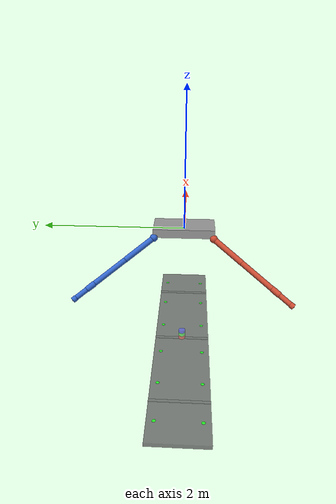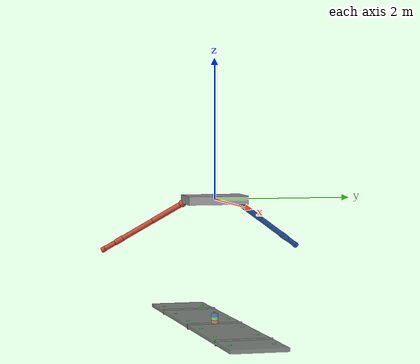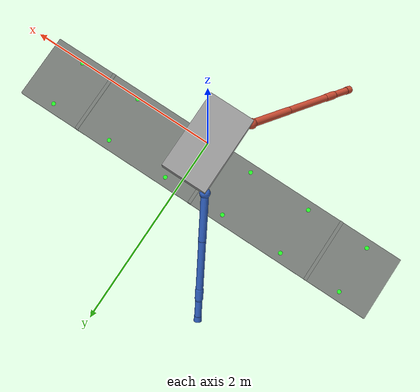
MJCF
<mujoco model="VISPA_crawling_rwa3_8pct">

  <!-- ==================== COMPILER ==================== -->
  <compiler angle="radian" eulerseq="XYZ" autolimits="true"/>

  <!-- ==================== OPTIONS ==================== -->
  <option gravity="0 0 0" timestep="0.001" integrator="RK4">
    <!-- RK4: best momentum conservation for coupled floating-base systems -->
    <flag energy="enable" contact="enable"/>
  </option>

  <!-- ==================== VISUAL ==================== -->
  <visual>
    <headlight diffuse="0.6 0.6 0.6" ambient="0.3 0.3 0.3"/>
    <rgba com="0 1 0 0" contactforce="1 0 0 0.5"/>
    <scale com="0.05" contactwidth="0.02" contactheight="0.05"
           forcewidth="0.02" framelength="0.15" framewidth="0.005"/>
  </visual>

  <!-- ==================== DEFAULTS ==================== -->
  <default>
    <!-- Robot joints -->
    <default class="robot_joint">
      <joint damping="0.05" armature="0.05" limited="true"
             range="-3.14159 3.14159"/>
      <default class="arm_a">
        <geom rgba="0.2 0.4 0.8 1" contype="0" conaffinity="0"/>
      </default>
      <default class="arm_b">
        <geom rgba="0.8 0.3 0.2 1" contype="0" conaffinity="0"/>
      </default>
    </default>
    <!-- Structure -->
    <default class="structure">
      <geom rgba="0.4 0.4 0.4 0.8" contype="2" conaffinity="2"/>
    </default>
    <!-- Anchor sites -->
    <default class="anchor">
      <site type="cylinder" size="0.025 0.005" rgba="0 1 0 0.8"/>
    </default>
    <!-- Gripper sites (on tool tips) -->
    <default class="gripper">
      <site type="sphere" size="0.03" rgba="1 1 0 0.8"/>
    </default>
  </default>

  <!-- ==================== WORLDBODY ==================== -->
  <worldbody>
    <!-- Ambient light -->
    <light pos="0 0 5" dir="0 0 -1" diffuse="0.8 0.8 0.8" castshadow="false"/>
    <light pos="3 3 3" dir="-1 -1 -1" diffuse="0.5 0.5 0.5" castshadow="true"/>

    <!-- ============ FLOATING STRUCTURE ============ -->
    <body name="structure" pos="0 0 -1.8">
      <freejoint name="structure_free"/>
      <inertial pos="0 0 0" mass="888"
                fullinertia="74.6 186.5 222.0 0 0 0"/>
      <!-- Main beam -->
      <geom class="structure" type="box" size="2.4 0.4 0.025" name="beam"/>
      <!-- Cross-beams for rigidity visualization -->
      <geom class="structure" type="box" size="0.02 0.4 0.04" pos="-1.6 0 0"/>
      <geom class="structure" type="box" size="0.02 0.4 0.04" pos="0 0 0"/>
      <geom class="structure" type="box" size="0.02 0.4 0.04" pos="1.6 0 0"/>

      <!-- Anchor sites — row A (y = +0.3) -->
      <site name="anchor_1a" class="anchor" pos="-2.0  0.3 0.025"/>
      <site name="anchor_2a" class="anchor" pos="-1.2  0.3 0.025"/>
      <site name="anchor_3a" class="anchor" pos="-0.4  0.3 0.025"/>
      <site name="anchor_4a" class="anchor" pos=" 0.4  0.3 0.025"/>
      <site name="anchor_5a" class="anchor" pos=" 1.2  0.3 0.025"/>
      <site name="anchor_6a" class="anchor" pos=" 2.0  0.3 0.025"/>
      <!-- Anchor sites — row B (y = -0.3) -->
      <site name="anchor_1b" class="anchor" pos="-2.0 -0.3 0.025"/>
      <site name="anchor_2b" class="anchor" pos="-1.2 -0.3 0.025"/>
      <site name="anchor_3b" class="anchor" pos="-0.4 -0.3 0.025"/>
      <site name="anchor_4b" class="anchor" pos=" 0.4 -0.3 0.025"/>
      <site name="anchor_5b" class="anchor" pos=" 1.2 -0.3 0.025"/>
      <site name="anchor_6b" class="anchor" pos=" 2.0 -0.3 0.025"/>

      <!-- ============ REACTION WHEEL ASSEMBLY (3 orthogonal axes, Hsw=I3) ============ -->

      <!-- Wheel X: spin axis along structure X -->
      <!-- Inertia: spin=0.01 kg.m2, transverse=0.006 kg.m2 (satisfies triangle ineq.) -->
      <body name="rwa_x" pos="0 0 0.05">
        <inertial pos="0 0 0" mass="0.5"
                  fullinertia="0.01 0.006 0.006 0 0 0"/>
        <joint name="rw_x" type="hinge" axis="1 0 0" damping="1e-4" armature="0.01"/>
        <geom type="cylinder" size="0.05 0.02" rgba="0.8 0.2 0.2 0.7"
              contype="0" conaffinity="0"/>
      </body>
      <!-- Wheel Y: spin axis along structure Y -->
      <body name="rwa_y" pos="0 0 0.10">
        <inertial pos="0 0 0" mass="0.5"
                  fullinertia="0.006 0.01 0.006 0 0 0"/>
        <joint name="rw_y" type="hinge" axis="0 1 0" damping="1e-4" armature="0.01"/>
        <geom type="cylinder" size="0.05 0.02" rgba="0.2 0.8 0.2 0.7"
              contype="0" conaffinity="0"/>
      </body>
      <!-- Wheel Z: spin axis along structure Z -->
      <body name="rwa_z" pos="0 0 0.15">
        <inertial pos="0 0 0" mass="0.5"
                  fullinertia="0.006 0.006 0.01 0 0 0"/>
        <joint name="rw_z" type="hinge" axis="0 0 1" damping="1e-4" armature="0.01"/>
        <geom type="cylinder" size="0.05 0.02" rgba="0.2 0.2 0.8 0.7"
              contype="0" conaffinity="0"/>
      </body>
    </body>

    <!-- ============ ROBOT: TORSO (floating base) ============ -->
    <body name="torso" pos="0 0 0">
      <freejoint name="root"/>
      <inertial pos="0 0 0" mass="40.0"
                fullinertia="0.17980580 0.17982988 0.24241079 0 0 0"/>
      <!-- Torso geom: flat box spanning between shoulder joints -->
      <geom type="box" size="0.25 0.43 0.06" rgba="0.6 0.6 0.6 1"
            contype="0" conaffinity="0" name="torso_geom"/>
      <!-- Torso frame site for visualization -->
      <site name="torso_imu" size="0.02" rgba="1 1 1 0.5"/>

      <!-- ========== ARM A (blue) ========== -->
      <body name="Link_1_a" pos="-0.240 0.41469 -0.064498"
            euler="-2.0944 0 0.5236">
        <joint name="Joint_1_a" class="robot_joint" type="hinge" axis="0 0 1"/>
        <inertial pos="0 -0.029 -0.043" mass="2.328"
                  fullinertia="0.012 0.007 0.008 0 0 0.003"/>
        <geom class="arm_a" type="sphere" size="0.055" name="link1a_geom"/>

        <body name="Link_2_a" pos="0 0 0"
              euler="1.57079632679 -1.57079632679 0">
          <joint name="Joint_2_a" class="robot_joint" type="hinge" axis="0 0 1"/>
          <inertial pos="0.25 0 0.142" mass="3.995"
                    fullinertia="0.010 0.578 0.574 0 0 0"/>
          <geom class="arm_a" type="capsule" fromto="0 0 0  0.5 0 0"
                size="0.04" name="link2a_geom"/>

          <!-- Joint_swivel_a: SEW-redundant elbow swivel (spec §4.9.6) -->
          <body name="Link_2_swivel_a" pos="0.5 0 0">
            <joint name="Joint_swivel_a" class="robot_joint" type="hinge" axis="1 0 0"/>
            <inertial pos="0 0 0" mass="0.001"
                      fullinertia="1e-6 1e-6 1e-6 0 0 0"/>

            <body name="Link_3_a" pos="0 0 0"
                  euler="0 0 -1.57079632679">
              <joint name="Joint_3_a" class="robot_joint" type="hinge" axis="0 0 1"/>
            <inertial pos="0 0.043 0.029" mass="2.328"
                      fullinertia="0.012 0.008 0.007 0 0 0.003"/>
            <geom class="arm_a" type="capsule" fromto="0 0 0  0 0.65 0"
                  size="0.038" name="link3a_geom"/>

            <body name="Link_4_a" pos="0 0.65 0"
                  euler="-1.57079632679 0 0">
              <joint name="Joint_4_a" class="robot_joint" type="hinge" axis="0 0 1"/>
              <inertial pos="0 -0.043 -0.210" mass="3.157"
                        fullinertia="0.199 0.193 0.01 0 0 0.01"/>
              <geom class="arm_a" type="capsule" fromto="0 0 0  0 0 -0.1"
                    size="0.042" name="link4a_geom"/>

              <body name="Link_5_a" pos="0 0 -0.1"
                    euler="1.57079632679 0 0">
                <joint name="Joint_5_a" class="robot_joint" type="hinge" axis="0 0 1"/>
                <inertial pos="0 0.125 -0.007" mass="2.695"
                          fullinertia="0.029 0.006 0.027 0 0 -0.001"/>
                <geom class="arm_a" type="capsule" fromto="0 0 0  0 0.325 0"
                      size="0.036" name="link5a_geom"/>

                <body name="Link_6_a" pos="0 0.325 0"
                      euler="-1.57079632679 0 0">
                  <joint name="Joint_6_a" class="robot_joint" type="hinge" axis="0 0 1"/>
                  <inertial pos="0 0 0" mass="0.924"
                            fullinertia="0.002 0.002 0.001 0 0 0"/>
                  <geom class="arm_a" type="cylinder" size="0.04 0.03"
                        name="link6a_geom"/>

                  <body name="tool_a" pos="0 0 0">
                    <inertial pos="0 0 0" mass="0.1"
                              fullinertia="0.0001 0.0001 0.0001 0 0 0"/>
                    <geom class="arm_a" type="sphere" size="0.025"
                          name="tool_a_geom" rgba="0.2 0.4 0.8 0.5"/>
                    <site name="gripper_a" class="gripper"/>
                  </body>

                </body>
              </body>
            </body>
          </body>
          </body>  <!-- /Link_2_swivel_a -->
        </body>
      </body>

      <!-- ========== ARM B (red) ========== -->
      <body name="Link_1_b" pos="-0.240 -0.41469 -0.064498"
            euler="1.047197551 3.14159265359 -0.5236">
        <joint name="Joint_1_b" class="robot_joint" type="hinge" axis="0 0 1"/>
        <inertial pos="0 -0.029 -0.043" mass="2.328"
                  fullinertia="0.012 0.007 0.008 0 0 0.003"/>
        <geom class="arm_b" type="sphere" size="0.055" name="link1b_geom"/>

        <body name="Link_2_b" pos="0 0 0"
              euler="1.57079632679 -1.57079632679 0">
          <joint name="Joint_2_b" class="robot_joint" type="hinge" axis="0 0 1"/>
          <inertial pos="0.25 0 0.142" mass="3.995"
                    fullinertia="0.010 0.578 0.574 0 0 0"/>
          <geom class="arm_b" type="capsule" fromto="0 0 0  0.5 0 0"
                size="0.04" name="link2b_geom"/>

          <!-- Joint_swivel_b: SEW-redundant elbow swivel -->
          <body name="Link_2_swivel_b" pos="0.5 0 0">
            <joint name="Joint_swivel_b" class="robot_joint" type="hinge" axis="1 0 0"/>
            <inertial pos="0 0 0" mass="0.001"
                      fullinertia="1e-6 1e-6 1e-6 0 0 0"/>

            <body name="Link_3_b" pos="0 0 0"
                  euler="0 0 -1.57079632679">
              <joint name="Joint_3_b" class="robot_joint" type="hinge" axis="0 0 1"/>
            <inertial pos="0 0.043 0.029" mass="2.328"
                      fullinertia="0.012 0.008 0.007 0 0 0.003"/>
            <geom class="arm_b" type="capsule" fromto="0 0 0  0 0.65 0"
                  size="0.038" name="link3b_geom"/>

            <body name="Link_4_b" pos="0 0.65 0"
                  euler="-1.57079632679 0 0">
              <joint name="Joint_4_b" class="robot_joint" type="hinge" axis="0 0 1"/>
              <inertial pos="0 -0.043 -0.210" mass="3.157"
                        fullinertia="0.199 0.193 0.01 0 0 0.01"/>
              <geom class="arm_b" type="capsule" fromto="0 0 0  0 0 -0.1"
                    size="0.042" name="link4b_geom"/>

              <body name="Link_5_b" pos="0 0 -0.1"
                    euler="1.57079632679 0 0">
                <joint name="Joint_5_b" class="robot_joint" type="hinge" axis="0 0 1"/>
                <inertial pos="0 0.125 -0.007" mass="2.695"
                          fullinertia="0.029 0.006 0.027 0 0 -0.001"/>
                <geom class="arm_b" type="capsule" fromto="0 0 0  0 0.325 0"
                      size="0.036" name="link5b_geom"/>

                <body name="Link_6_b" pos="0 0.325 0"
                      euler="-1.57079632679 0 0">
                  <joint name="Joint_6_b" class="robot_joint" type="hinge" axis="0 0 1"/>
                  <inertial pos="0 0 0" mass="0.924"
                            fullinertia="0.002 0.002 0.001 0 0 0"/>
                  <geom class="arm_b" type="cylinder" size="0.04 0.03"
                        name="link6b_geom"/>

                  <body name="tool_b" pos="0 0 0">
                    <inertial pos="0 0 0" mass="0.1"
                              fullinertia="0.0001 0.0001 0.0001 0 0 0"/>
                    <geom class="arm_b" type="sphere" size="0.025"
                          name="tool_b_geom" rgba="0.8 0.3 0.2 0.5"/>
                    <site name="gripper_b" class="gripper"/>
                  </body>

                </body>
              </body>
            </body>
          </body>
          </body>  <!-- /Link_2_swivel_b -->
        </body>
      </body>

    </body> <!-- end torso -->
  </worldbody>

  <!-- ==================== ACTUATORS ==================== -->
  <actuator>
    <!-- Arm A -->
    <motor name="act_J1a"     joint="Joint_1_a"      gear="1" ctrlrange="-50 50"/>
    <motor name="act_J2a"     joint="Joint_2_a"      gear="1" ctrlrange="-50 50"/>
    <motor name="act_SWa"     joint="Joint_swivel_a" gear="1" ctrlrange="-50 50"/>
    <motor name="act_J3a"     joint="Joint_3_a"      gear="1" ctrlrange="-50 50"/>
    <motor name="act_J4a" joint="Joint_4_a" gear="1" ctrlrange="-50 50"/>
    <motor name="act_J5a" joint="Joint_5_a" gear="1" ctrlrange="-50 50"/>
    <motor name="act_J6a" joint="Joint_6_a" gear="1" ctrlrange="-50 50"/>
    <!-- Arm B -->
    <motor name="act_J1b"     joint="Joint_1_b"      gear="1" ctrlrange="-50 50"/>
    <motor name="act_J2b"     joint="Joint_2_b"      gear="1" ctrlrange="-50 50"/>
    <motor name="act_SWb"     joint="Joint_swivel_b" gear="1" ctrlrange="-50 50"/>
    <motor name="act_J3b"     joint="Joint_3_b"      gear="1" ctrlrange="-50 50"/>
    <motor name="act_J4b" joint="Joint_4_b" gear="1" ctrlrange="-50 50"/>
    <motor name="act_J5b" joint="Joint_5_b" gear="1" ctrlrange="-50 50"/>
    <motor name="act_J6b" joint="Joint_6_b" gear="1" ctrlrange="-50 50"/>
    <!-- RWA actuators (ctrl indices 12, 13, 14) — ctrlrange must match tau_w_max -->
    <motor name="act_rw_x" joint="rw_x" gear="1" ctrlrange="-5 5"/>
    <motor name="act_rw_y" joint="rw_y" gear="1" ctrlrange="-5 5"/>
    <motor name="act_rw_z" joint="rw_z" gear="1" ctrlrange="-5 5"/>
  </actuator>

  <!-- ==================== EQUALITY CONSTRAINTS (Gripper Welds) ==================== -->
  <equality>
    <!-- Arm A -> structure anchors (row A) -->
    <weld name="grip_a_to_1a" site1="gripper_a" site2="anchor_1a" solref="0.003 1" active="false"/>
    <weld name="grip_a_to_2a" site1="gripper_a" site2="anchor_2a" solref="0.003 1" active="false"/>
    <weld name="grip_a_to_3a" site1="gripper_a" site2="anchor_3a" solref="0.003 1" active="true"/>
    <weld name="grip_a_to_4a" site1="gripper_a" site2="anchor_4a" solref="0.003 1" active="false"/>
    <weld name="grip_a_to_5a" site1="gripper_a" site2="anchor_5a" solref="0.003 1" active="false"/>
    <weld name="grip_a_to_6a" site1="gripper_a" site2="anchor_6a" solref="0.003 1" active="false"/>

    <!-- Arm B -> structure anchors (row B) -->
    <weld name="grip_b_to_1b" site1="gripper_b" site2="anchor_1b" solref="0.003 1" active="false"/>
    <weld name="grip_b_to_2b" site1="gripper_b" site2="anchor_2b" solref="0.003 1" active="false"/>
    <weld name="grip_b_to_3b" site1="gripper_b" site2="anchor_3b" solref="0.003 1" active="true"/>
    <weld name="grip_b_to_4b" site1="gripper_b" site2="anchor_4b" solref="0.003 1" active="false"/>
    <weld name="grip_b_to_5b" site1="gripper_b" site2="anchor_5b" solref="0.003 1" active="false"/>
    <weld name="grip_b_to_6b" site1="gripper_b" site2="anchor_6b" solref="0.003 1" active="false"/>
  </equality>

  <!-- ==================== CONTACT PAIRS ==================== -->
  <contact/>

  <!-- ==================== SENSORS ==================== -->
  <sensor>
    <!-- Base pose and velocity (for MPC feedback) -->
    <framepos    name="torso_pos"    objtype="body" objname="torso"/>
    <framequat   name="torso_quat"   objtype="body" objname="torso"/>
    <framelinvel name="torso_linvel" objtype="body" objname="torso"/>
    <frameangvel name="torso_angvel" objtype="body" objname="torso"/>
    <!-- Structure attitude (for disturbance measurement) -->
    <framequat   name="struct_quat"   objtype="body" objname="structure"/>
    <frameangvel name="struct_angvel" objtype="body" objname="structure"/>
    <!-- End-effector positions -->
    <framepos name="tool_a_pos" objtype="body" objname="tool_a"/>
    <framepos name="tool_b_pos" objtype="body" objname="tool_b"/>
    <!-- Joint torque sensors (for debugging/monitoring) -->
    <jointactuatorfrc name="tau_J1a" joint="Joint_1_a"/>
    <jointactuatorfrc name="tau_J1b" joint="Joint_1_b"/>
    <!-- RWA speed sensors -->
    <jointvel name="rw_x_vel" joint="rw_x"/>
    <jointvel name="rw_y_vel" joint="rw_y"/>
    <jointvel name="rw_z_vel" joint="rw_z"/>
  </sensor>

  <!-- ==================== KEYFRAMES ==================== -->
  <keyframe>
    <!-- Home: qpos layout with RWA:
         [struct_pos(3) struct_quat(4) rw_x rw_y rw_z
          torso_pos(3) torso_quat(4) J1a..J6a J1b..J6b]
         Total: 7 + 3 + 7 + 14 = 31 DOF (7-DOF arms) -->
    <key name="home" qpos="0 0 -1.8  1 0 0 0  0 0 0
                            0 0 0  1 0 0 0
                            0 0 0 0 0 0 0  0 0 0 0 0 0 0"/>
  </keyframe>

</mujoco>
